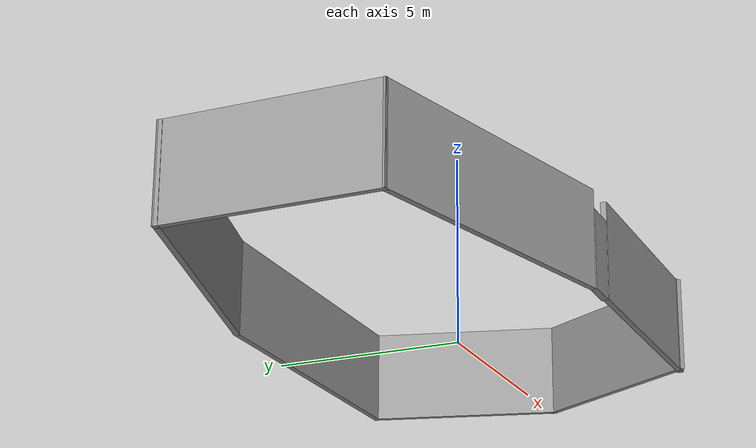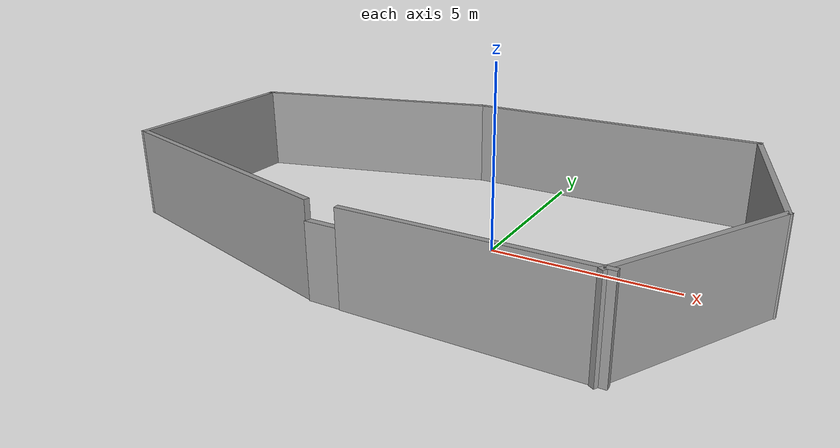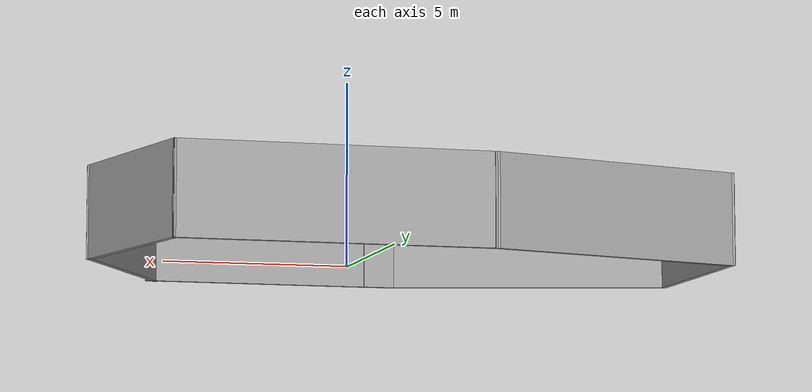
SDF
<?xml version='1.0'?>
<sdf version='1.6'>
  <model name='Untitled'>
    <pose frame=''>-1.45183 0.159257 0 0 -0 0</pose>
    <link name='Door_0'>
      <collision name='Door_0_Collision'>
        <geometry>
          <box>
            <size>0.9 0.17 2</size>
          </box>
        </geometry>
        <pose frame=''>0 0 1 0 -0 0</pose>
      </collision>
      <visual name='Door_0_Visual'>
        <pose frame=''>0 0 1 0 -0 0</pose>
        <geometry>
          <box>
            <size>0.9 0.17 2</size>
          </box>
        </geometry>
        <material>
          <script>
            <uri>file://media/materials/scripts/gazebo.material</uri>
            <name>Gazebo/Grey</name>
          </script>
        </material>
      </visual>
      <pose frame=''>-0.568965 -4.5672 0 0 -0 0</pose>
    </link>
    <link name='Wall_10'>
      <collision name='Wall_10_Collision'>
        <geometry>
          <box>
            <size>5.5 0.15 2.5</size>
          </box>
        </geometry>
        <pose frame=''>0 0 1.25 0 -0 0</pose>
      </collision>
      <visual name='Wall_10_Visual'>
        <pose frame=''>0 0 1.25 0 -0 0</pose>
        <geometry>
          <box>
            <size>5.5 0.15 2.5</size>
          </box>
        </geometry>
        <material>
          <script>
            <uri>file://media/materials/scripts/gazebo.material</uri>
            <name>Gazebo/Grey</name>
          </script>
          <ambient>1 1 1 1</ambient>
        </material>
        <meta>
          <layer>0</layer>
        </meta>
      </visual>
      <pose frame=''>-8.39006 0.099453 0 0 -0 -1.5708</pose>
    </link>
    <link name='Wall_11'>
      <collision name='Wall_11_Collision'>
        <geometry>
          <box>
            <size>7.75 0.15 2.5</size>
          </box>
        </geometry>
        <pose frame=''>0 0 1.25 0 -0 0</pose>
      </collision>
      <visual name='Wall_11_Visual'>
        <pose frame=''>0 0 1.25 0 -0 0</pose>
        <geometry>
          <box>
            <size>7.75 0.15 2.5</size>
          </box>
        </geometry>
        <material>
          <script>
            <uri>file://media/materials/scripts/gazebo.material</uri>
            <name>Gazebo/Grey</name>
          </script>
          <ambient>1 1 1 1</ambient>
        </material>
        <meta>
          <layer>0</layer>
        </meta>
      </visual>
      <pose frame=''>-4.71955 -3.55906 0 0 -0 -0.261799</pose>
    </link>
    <link name='Wall_13'>
      <collision name='Wall_13_Collision'>
        <geometry>
          <box>
            <size>6.25 0.15 2.5</size>
          </box>
        </geometry>
        <pose frame=''>0 0 1.25 0 -0 0</pose>
      </collision>
      <visual name='Wall_13_Visual'>
        <pose frame=''>0 0 1.25 0 -0 0</pose>
        <geometry>
          <box>
            <size>6.25 0.15 2.5</size>
          </box>
        </geometry>
        <material>
          <script>
            <uri>file://media/materials/scripts/gazebo.material</uri>
            <name>Gazebo/Grey</name>
          </script>
          <ambient>1 1 1 1</ambient>
        </material>
        <meta>
          <layer>0</layer>
        </meta>
      </visual>
      <pose frame=''>2.97048 -4.59779 0 0 -0 0</pose>
    </link>
    <link name='Wall_15'>
      <collision name='Wall_15_Collision'>
        <geometry>
          <box>
            <size>7.5 0.15 2.5</size>
          </box>
        </geometry>
        <pose frame=''>0 0 1.25 0 -0 0</pose>
      </collision>
      <visual name='Wall_15_Visual'>
        <pose frame=''>0 0 1.25 0 -0 0</pose>
        <geometry>
          <box>
            <size>7.5 0.15 2.5</size>
          </box>
        </geometry>
        <material>
          <script>
            <uri>file://media/materials/scripts/gazebo.material</uri>
            <name>Gazebo/Grey</name>
          </script>
          <ambient>1 1 1 1</ambient>
        </material>
        <meta>
          <layer>0</layer>
        </meta>
      </visual>
      <pose frame=''>-4.84029 3.72561 0 0 -0 0.261799</pose>
    </link>
    <link name='Wall_16'>
      <collision name='Wall_16_Collision'>
        <geometry>
          <box>
            <size>8.5 0.15 2.5</size>
          </box>
        </geometry>
        <pose frame=''>0 0 1.25 0 -0 0</pose>
      </collision>
      <visual name='Wall_16_Visual'>
        <pose frame=''>0 0 1.25 0 -0 0</pose>
        <geometry>
          <box>
            <size>8.5 0.15 2.5</size>
          </box>
        </geometry>
        <material>
          <script>
            <uri>file://media/materials/scripts/gazebo.material</uri>
            <name>Gazebo/Grey</name>
          </script>
          <ambient>1 1 1 1</ambient>
        </material>
        <meta>
          <layer>0</layer>
        </meta>
      </visual>
      <pose frame=''>2.88449 4.67677 0 0 -0 0</pose>
    </link>
    <link name='Wall_17'>
      <collision name='Wall_17_Collision'>
        <geometry>
          <box>
            <size>5.25 0.15 2.5</size>
          </box>
        </geometry>
        <pose frame=''>0 0 1.25 0 -0 0</pose>
      </collision>
      <visual name='Wall_17_Visual'>
        <pose frame=''>0 0 1.25 0 -0 0</pose>
        <geometry>
          <box>
            <size>5.25 0.15 2.5</size>
          </box>
        </geometry>
        <material>
          <script>
            <uri>file://media/materials/scripts/gazebo.material</uri>
            <name>Gazebo/Grey</name>
          </script>
          <ambient>1 1 1 1</ambient>
        </material>
        <meta>
          <layer>0</layer>
        </meta>
      </visual>
      <pose frame=''>7.71948 2.21366 0 0 -0 -1.309</pose>
    </link>
    <link name='Wall_18'>
      <collision name='Wall_18_Collision'>
        <geometry>
          <box>
            <size>5.25 0.15 2.5</size>
          </box>
        </geometry>
        <pose frame=''>0 0 1.25 0 -0 0</pose>
      </collision>
      <visual name='Wall_18_Visual'>
        <pose frame=''>0 0 1.25 0 -0 0</pose>
        <geometry>
          <box>
            <size>5.25 0.15 2.5</size>
          </box>
        </geometry>
        <material>
          <script>
            <uri>file://media/materials/scripts/gazebo.material</uri>
            <name>Gazebo/Grey</name>
          </script>
          <ambient>1 1 1 1</ambient>
        </material>
        <meta>
          <layer>0</layer>
        </meta>
      </visual>
      <pose frame=''>7.10447 -2.45781 0 0 -0 -2.0944</pose>
    </link>
    <link name='Wall_9'>
      <collision name='Wall_9_Collision'>
        <geometry>
          <box>
            <size>0.16 0.15 2.5</size>
          </box>
        </geometry>
        <pose frame=''>0 0 1.25 0 -0 0</pose>
      </collision>
      <visual name='Wall_9_Visual'>
        <pose frame=''>0 0 1.25 0 -0 0</pose>
        <geometry>
          <box>
            <size>0.16 0.15 2.5</size>
          </box>
        </geometry>
        <material>
          <script>
            <uri>file://media/materials/scripts/gazebo.material</uri>
            <name>Gazebo/Grey</name>
          </script>
          <ambient>1 1 1 1</ambient>
        </material>
        <meta>
          <layer>0</layer>
        </meta>
      </visual>
      <pose frame=''>-8.39506 2.77445 0 0 -0 0</pose>
    </link>
    <static>1</static>
  </model>
</sdf>
